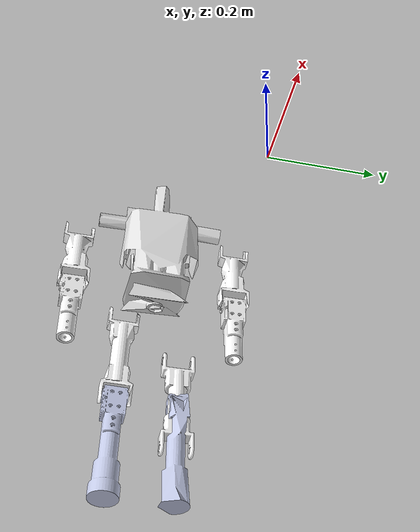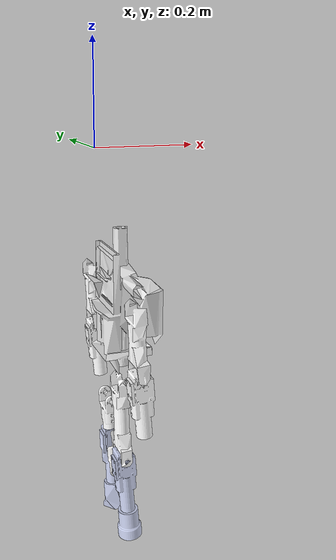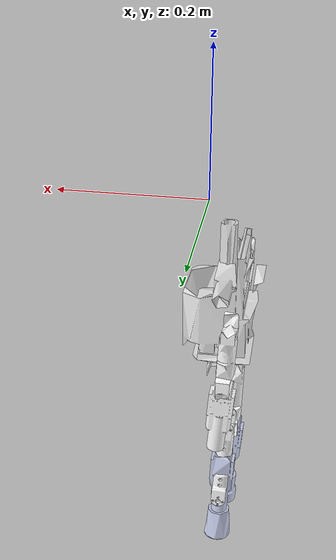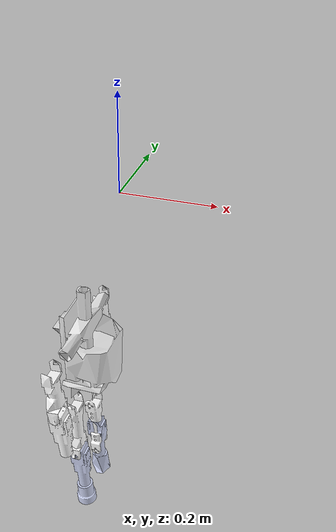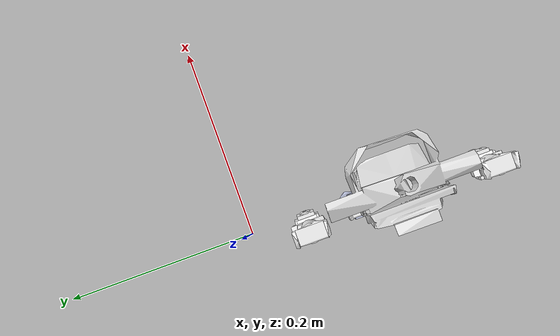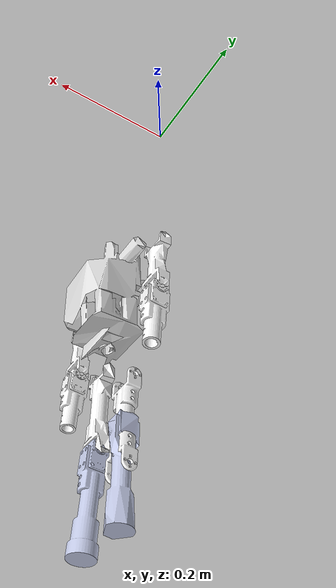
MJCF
<mujoco model="Humanoid_Cap">
  <compiler angle="radian"/>
  <asset>
    <mesh name="torso" file="humanoid_urdf/torso.stl"/>
    <mesh name="left_shoulder_roll_link" file="humanoid_urdf/left_shoulder_roll_link.stl"/>
    <mesh name="left_shoulder_pitch_link" file="humanoid_urdf/left_shoulder_pitch_link.stl"/>
    <mesh name="left_forearm_pitch_link" file="humanoid_urdf/left_forearm_pitch_link.stl"/>
    <mesh name="left_waist_roll_link" file="humanoid_urdf/left_waist_roll_link.stl"/>
    <mesh name="left_waist_pitch_link" file="humanoid_urdf/left_waist_pitch_link.stl"/>
    <mesh name="left_knee_pitch_link" file="humanoid_urdf/left_knee_pitch_link.stl"/>
    <mesh name="right_waist_roll_link" file="humanoid_urdf/right_waist_roll_link.stl"/>
    <mesh name="right_waist_pitch_link" file="humanoid_urdf/right_waist_pitch_link.stl"/>
    <mesh name="right_knee_pitch_link" file="humanoid_urdf/right_knee_pitch_link.stl"/>
  </asset>
  <worldbody>
    <body name="humanoid_world_link" pos="0 0 -0.375" quat="-0.7 0 0 0.7">
      <joint name="humanoid_free" type="free"/>
      <body name="torso" pos="0.1675 -0.005 0.135">
         <inertial pos="0 0 0" mass="1.12683815772725" euler="-0.0008201436182088129 -0.12382311655719636 1.5628008270149865" diaginertia="0.010527741038321506 0.009364184382386672 0.004851735924892816"/>
        <geom type="mesh"  rgba="0.898039 0.898039 0.898039 1" mesh="torso"/>
      </body>
      <body name="right_shoulder_roll_link" pos="0.31335 -0.0091897 0.17689" quat="0.707105 0.707107 -0.00096831 0.000968314">
        <inertial pos="0.000605694 -0.0120164 0.0186305" quat="0.653192 0.653383 -0.270554 0.270611" mass="0.0517508" diaginertia="1.4546e-05 1.38577e-05 1.00733e-05"/>
        <joint range="-1.5708 0" name="right_shoulder_roll" pos="0 0 0" axis="0 0 -1"/>
        <body name="right_shoulder_pitch_link" pos="0 -0.024 0.018" quat="0.706803 0.020714 -0.706803 -0.020714">
          <inertial pos="-5.93785e-06 -0.0552442 -1.9163e-10" quat="0.707107 0.707107 0 0" mass="0.0745776" diaginertia="3.48174e-05 2.30396e-05 2.00988e-05"/>
          <joint range="-1.5708 1.5708" name="right_shoulder_pitch" pos="0 0 0" axis="0 0 1"/>
          <geom type="mesh" rgba="1 1 1 1" pos="0 -0.048 0" mesh="left_shoulder_pitch_link"/>
          <body name="right_forearm_pitch_link" pos="0 -0.11049 0" quat="0.707055 -0.00862726 -0.707053 -0.00862572">
            <inertial pos="0.000238558 -0.0331073 8.27912e-05" quat="0.707052 0.70712 -0.00486423 -0.00594191" mass="0.094279" diaginertia="3.34885e-05 3.00632e-05 1.67663e-05"/>
            <joint range="-1.5708 0" name="right_elbow" pos="0 0 0" axis="1 0 0"/>
            <geom type="mesh" rgba="1 1 1 1" pos="0 -0.048 0" mesh="left_forearm_pitch_link"/>
          </body>
        </body>
      </body>
      <body name="left_shoulder_roll_link" pos="0.057897 -0.0091897 0.17689" quat="0.707105 0.707107 -0.00096831 0.000968314">
        <inertial pos="0.000605694 -0.0120164 0.0186305" quat="0.653192 0.653383 -0.270554 0.270611" mass="0.0517508" diaginertia="1.4546e-05 1.38577e-05 1.00733e-05"/>
        <joint range="0 1.5708" name="left_shoulder_roll" pos="0 0 0" axis="0 0 -1"/>
        <body name="left_shoulder_pitch_link" pos="0 -0.024 0.018" quat="0.706803 0.020714 -0.706803 -0.020714">
          <inertial pos="-5.93785e-06 -0.0552442 -1.9163e-10" quat="0.707107 0.707107 0 0" mass="0.0745776" diaginertia="3.48174e-05 2.30396e-05 2.00988e-05"/>
          <joint range="-1.5708 1.5708" name="left_shoulder_pitch" pos="0 0 0" axis="0 0 1"/>
          <geom type="mesh" rgba="1 1 1 1" pos="0 -0.048 0" mesh="left_shoulder_pitch_link"/>
          <body name="left_forearm_pitch_link" pos="0 -0.11049 0" quat="0.707055 -0.00862726 -0.707053 -0.00862572">
            <inertial pos="0.000238558 -0.0331073 8.27912e-05" quat="0.707052 0.70712 -0.00486423 -0.00594191" mass="0.094279" diaginertia="3.34885e-05 3.00632e-05 1.67663e-05"/>
            <joint range="-1.5708 0" name="left_elbow" pos="0 0 0" axis="1 0 0"/>
            <geom type="mesh" rgba="1 1 1 1" pos="0 -0.048 0" mesh="left_forearm_pitch_link"/>
          </body>
        </body>
      </body>
      <body name="right_waist_roll_link" pos="0.22812 -0.0082528 0.025136" quat="0.707039 0.707041 -0.0097277 0.00972773">
        <inertial pos="0.000605143 -0.0120164 0.0186305" quat="0.653192 0.653383 -0.270554 0.270611" mass="0.0517508" diaginertia="1.4546e-05 1.38577e-05 1.00733e-05"/>
        <joint range="-1.5708 0.26" name="right_hip_roll" pos="0 0 0" axis="0 0 -1"/>
        <body name="right_waist_pitch_link" pos="0 -0.024 0.018" quat="0.707056 0.00844572 0.707056 0.00844572">
          <inertial pos="4.98631e-06 -0.0752442 -1.31697e-09" quat="0.707107 0.707107 0 0" mass="0.0888059" diaginertia="6.15393e-05 4.97615e-05 2.20093e-05"/>
          <joint range="-1.5708 1.5708" name="right_hip_pitch" pos="0 0 0" axis="0 0 -1"/>
          <geom type="mesh" rgba="1 1 1 1" pos="0 -0.075 0" mesh="left_waist_pitch_link"/>
          <body name="right_knee_pitch_link" pos="0 -0.150488 0" quat="0 -0.0240565 0.999711 0">
            <inertial pos="0.000109197 -0.0801721 0.00013442" quat="0.499013 0.501748 -0.500969 0.498263" mass="0.167319" diaginertia="8.01423e-05 7.67196e-05 3.31839e-05"/>
            <joint range="0 1.5708" name="right_knee" pos="0 0 0" axis="0 0 1"/>
            <geom name="pressure_geom_L" type="mesh" pos="0 -0.075 0" rgba="0.792157 0.819608 0.933333 1" mesh="left_knee_pitch_link" friction="0.8 0.02 0.01"/>
            <site name="right_bottom_foot" pos="0 -0.15 0" size=".027" rgba="0 0 0 0"/>
          </body>
        </body>
      </body>
      <body name="left_waist_roll_link" pos="0.14312 -0.0082528 0.025136" quat="0.707101 0.707104 0.00253804 -0.00253805">
        <inertial pos="0.000605143 -0.0120164 0.0186305" quat="0.653192 0.653383 -0.270554 0.270611" mass="0.0517508" diaginertia="1.4546e-05 1.38577e-05 1.00733e-05"/>
        <joint range="-0.26 1.5708" name="left_hip_roll" pos="0 0 0" axis="0 0 -1"/>
        <body name="left_waist_pitch_link" pos="0 -0.024 0.018" quat="0.706835 0.0196184 0.706835 0.0196184">
          <inertial pos="4.98627e-06 -0.0752442 -1.53469e-09" quat="0.707107 0.707107 0 0" mass="0.088806" diaginertia="6.15393e-05 4.97615e-05 2.20093e-05"/>
          <joint range="-1.5708 1.5708" name="left_hip_pitch" pos="0 0 0" axis="0 0 -1"/>
          <geom type="mesh" rgba="1 1 1 1" pos="0 -0.075 0" mesh="right_waist_pitch_link"/>
          <body name="left_knee_pitch_link" pos="0 -0.15049 0" quat="-3.26776e-08 0.00889621 0.99996 -3.67306e-06">
            <inertial pos="0.000109197 -0.0801721 0.00013442" quat="0.499013 0.501748 -0.500969 0.498263" mass="0.167319" diaginertia="8.01423e-05 7.67196e-05 3.31839e-05"/>
            <joint range="0 1.5708" name="left_knee" pos="0 0 0" axis="0 0 1"/>
            <geom name="pressure_geom_R" type="mesh" pos="0 -0.075 0" rgba="0.792157 0.819608 0.933333 1" mesh="right_knee_pitch_link" friction="0.8 0.02 0.01"/>
            <site name="left_bottom_foot" pos="0 -0.15 0" size=".027" rgba="0 0 0 0"/>
          </body>
        </body>
      </body>
    </body>
  </worldbody>

  <actuator>
    <motor name="right_shoulder_pitch" joint="right_shoulder_pitch"/>
    <motor name="right_shoulder_roll" joint="right_shoulder_roll"/>
    <motor name="right_elbow" joint="right_elbow"/>
    <motor name="left_shoulder_pitch" joint="left_shoulder_pitch"/>
    <motor name="left_shoulder_roll" joint="left_shoulder_roll"/>
    <motor name="left_elbow" joint="left_elbow"/>
    <motor name="left_hip_roll" joint="left_hip_roll"  />
    <motor name="left_hip_pitch" joint="left_hip_pitch"/>
    <motor name="left_knee" joint="left_knee"/>
    <motor name="right_hip_roll" joint="right_hip_roll"/>
    <motor name="right_hip_pitch" joint="right_hip_pitch"/>
    <motor name="right_knee" joint="right_knee"/>
  </actuator>

</mujoco>
